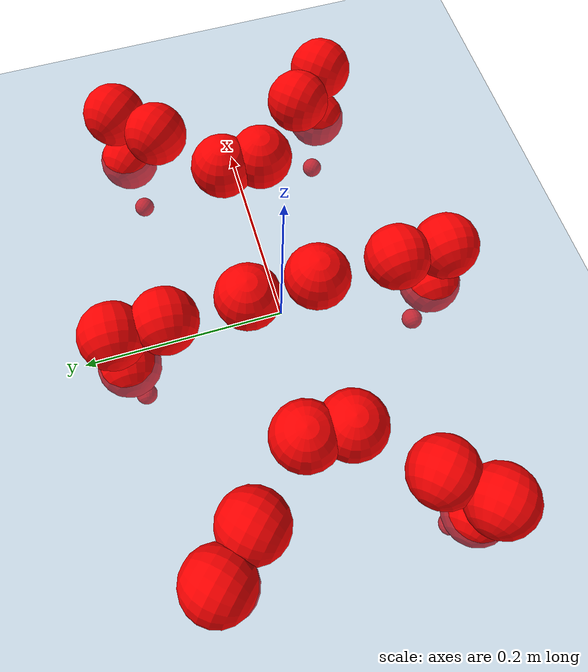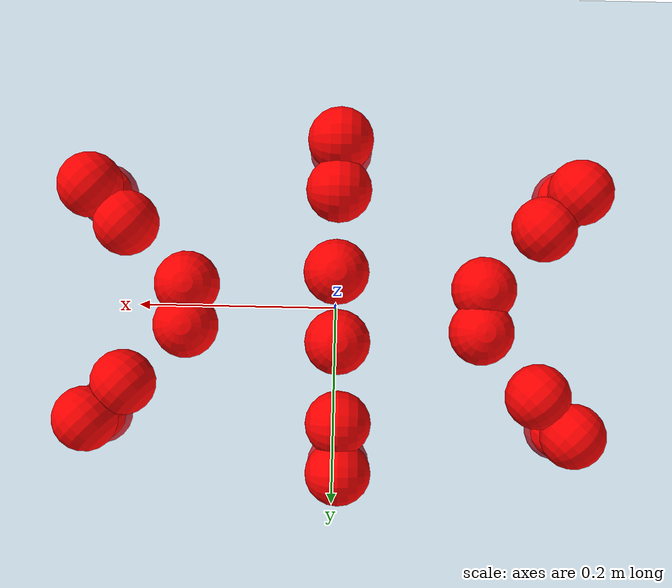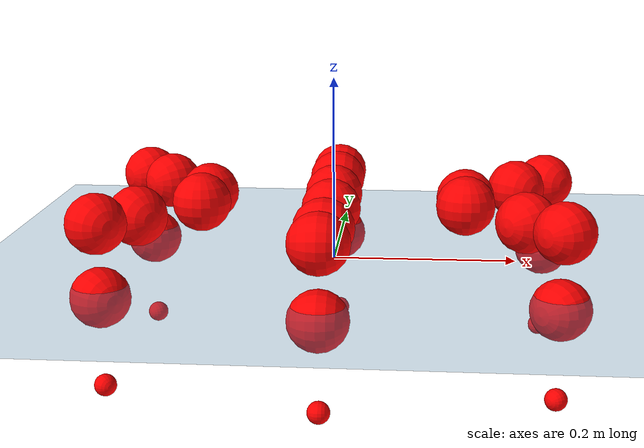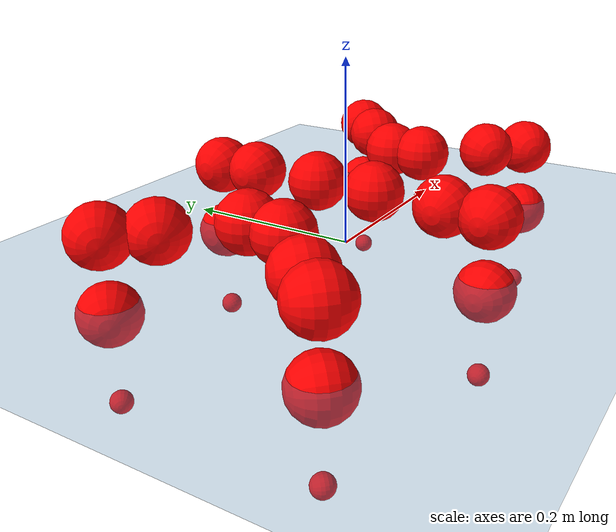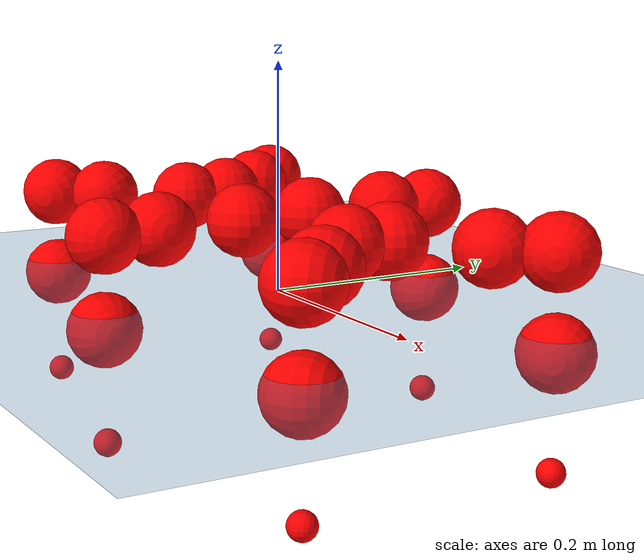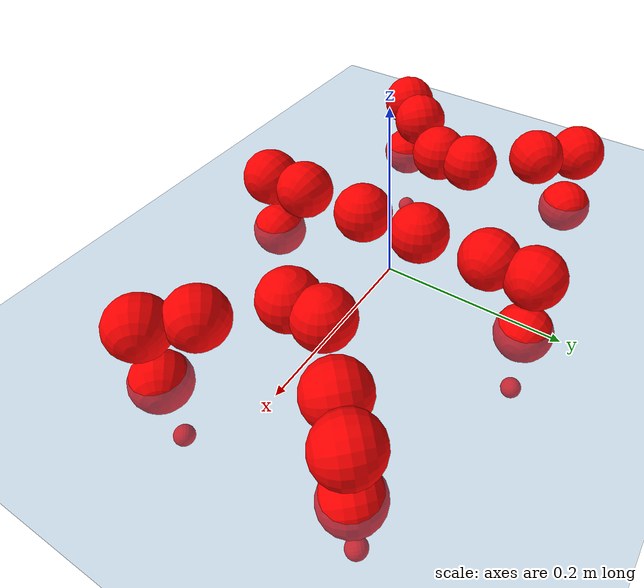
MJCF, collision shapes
<mujoco model="Golem">
  <compiler angle="radian" assetdir="assets" balanceinertia="true" inertiafromgeom="false"/>

  <option timestep="0.005" density="1.2" viscosity="2e-05"/>

  <size nkey="1"/>

  <visual>
    <quality shadowsize="8192"/>
    <map shadowclip="0.5"/>
  </visual>

  <default>
    <default class="/">
      <joint armature="0.01" damping="0.01" frictionloss="0.01"/>
      <geom contype="0" conaffinity="0" group="1" solref="-1000 -80"/>
      <site size="0.01 0.005 0.005" group="5"/>
      <general forcelimited="true" biastype="affine" gainprm="25" biasprm="0 -25 -0.5"/>
      <default class="visual">
        <geom type="mesh" group="2"/>
      </default>
      <default class="collision">
        <geom group="3"/>
      </default>
      <default class="foot">
        <geom size="0.01 0 0" condim="6" group="4" priority="1" solimp="0.015 1 0.01"/>
      </default>
      <default class="reward_collision_sphere">
        <geom group="5" rgba="1 0 0 1"/>
      </default>
    </default>
  </default>

  <asset>
    <texture type="skybox" colorspace="auto" name="//unnamed_texture_0" builtin="gradient" rgb1="0.95 0.95 0.95" rgb2="0.95 0.95 0.95" width="100" height="600"/>
    <texture type="2d" colorspace="auto" name="texplane" builtin="checker" rgb1="0.345 0.575 0.748" rgb2="0.345 0.575 0.748" markrgb="1 1 1" width="512" height="512"/>
    <material name="MatPlane" class="/" texture="texplane" texuniform="true" texrepeat="2 2" specular="0.9"/>
    <mesh name="body" class="/" file="body.stl" scale="0.001 0.001 0.001"/>
    <mesh name="coxa" class="/" file="coxa.stl" scale="0.001 0.001 0.001"/>
    <mesh name="femur" class="/" file="femur.stl" scale="0.001 0.001 0.001"/>
    <mesh name="tibia" class="/" file="tibia.stl" scale="0.001 0.001 0.001"/>
    <mesh name="tarsus" class="/" file="tarsus.stl" scale="0.001 0.001 0.001"/>
  </asset>

  <worldbody>
    <geom name="floor" class="/" size="100 100 0.125" type="plane" group="0" material="MatPlane"/>
    <light name="toplight_shadow" class="/" pos="0 0 5" dir="0.0990148 0.0990148 -0.990148" type="directional" ambient="0.04 0.04 0.04" diffuse="0.55 0.55 0.55" specular="0.12 0.12 0.12"/>
    <light name="toplight_fill" class="/" pos="0 0 5" dir="0.0990148 0.0990148 -0.990148" type="directional" castshadow="false" ambient="0.04 0.04 0.04" diffuse="0.3 0.3 0.3" specular="0.08 0.08 0.08"/>
    <body name="trunk" pos="-2.64575e-05 7.15001e-05 7.60152e-05" quat="1 7.53218e-05 -0.000260162 0.000625228">
      <inertial pos="-4.99675e-05 -0.000481093 -0.00363301" quat="1 0.000173417 3.20659e-05 6.28143e-05" mass="1.89228" diaginertia="0.00624201 0.000212701 0.0109099"/>
      <joint name="//unnamed_joint_0" type="free"/>
      <geom name="//unnamed_geom_1" class="/" pos="0 0 0.065152" quat="1 0 0 0" type="mesh" rgba="0.9 0.9 0.9 1" mesh="body"/>
      <site name="imu" class="/" pos="0.123571 0.00416511 0.102681" size="0.00796814"/>
      <camera name="track" class="/" pos="0 -0.925246 0" quat="0.707107 0.707107 0 0" mode="trackcom"/>
      <camera name="ego_camera" class="/" pos="0.118276 0 0.1018" quat="-0.5 -0.5 0.5 0.5"/>
      <body name="coxa_RR" pos="-0.162529 -0.0389117 0.065823" quat="0.382167 0.000426095 -0.000203681 -0.924093">
        <inertial pos="-0.00036466 0.000205151 0.000713412" quat="0.999995 0.000822693 -0.00292578 0.000847468" mass="0.10087" diaginertia="0.00624358 0.000211555 0.0109811"/>
        <joint name="coxa_joint_RR" class="/" pos="0 0 0" axis="0.00194334 0.00343053 -0.999992" range="-3.13696 3.12218" armature="0.00796451" damping="0.00791557" frictionloss="0.00764711"/>
        <geom name="//unnamed_geom_2" class="/" type="mesh" rgba="0.2 0.2 0.2 1" mesh="coxa"/>
        <geom name="//unnamed_geom_3" class="reward_collision_sphere" size="0.0318726" pos="-0.0272946 0 0"/>
        <body name="femur_RR" pos="0.0551872 0.00153953 -0.00136268" quat="0.499995 -0.500002 0.500004 0.499999">
          <inertial pos="0.000122406 8.42059e-05 -0.000273545" quat="1 -9.87113e-05 5.5913e-05 2.54039e-05" mass="0.100941" diaginertia="0.0061652 0.000209599 0.0109931"/>
          <joint name="femur_joint_RR" class="/" pos="0 0 0" axis="0.00332045 -0.000690608 -0.999994" range="-3.12462 3.13285" armature="0.00782883" damping="0.00157294" frictionloss="0.00811971"/>
          <geom name="//unnamed_geom_4" class="/" type="mesh" rgba="0.9 0.9 0.9 1" mesh="femur"/>
          <geom name="//unnamed_geom_5" class="reward_collision_sphere" size="0.0318726"/>
          <body name="tibia_RR" pos="-0.000298677 -0.049915 0.00135884" quat="5.05224e-05 1 9.50741e-05 -0.00023053">
            <inertial pos="-8.40804e-06 -0.000368259 -5.16644e-05" quat="1 0.000135353 0.000161474 0.000407438" mass="0.101296" diaginertia="0.00627163 0.000211783 0.0108947"/>
            <joint name="tibia_joint_RR" class="/" pos="0 0 0" axis="0.00206877 -0.00238591 0.999995" range="-3.12118 3.13295" armature="0.00796386" damping="0" frictionloss="0.00776779"/>
            <geom name="//unnamed_geom_6" class="/" type="mesh" rgba="0.2 0.2 0.2 1" mesh="tibia"/>
            <geom name="//unnamed_geom_7" class="reward_collision_sphere" size="0.0318726"/>
            <body name="tarsus_RR" pos="0.0788004 -0.000157934 -0.00107112" quat="1 6.20065e-05 -0.000285153 7.85001e-05">
              <inertial pos="0.0555482 0.000424296 0.00034565" quat="0.499288 0.499516 0.501193 0.500001" mass="0.0996849" diaginertia="0.00610211 0.00021163 0.010707"/>
              <joint name="tarsus_joint_RR" class="/" pos="0 0 0" axis="-6.04624e-05 -0.00207058 0.999998" range="-3.11989 3.12862" armature="0.00802577" damping="0.00104016" frictionloss="0.00813829"/>
              <geom name="//unnamed_geom_8" class="/" type="mesh" rgba="0.9 0.9 0.9 1" mesh="tarsus"/>
              <geom name="foot_1" class="foot" size="0.00766847" pos="0.1019 0 0" quat="0 -0.707107 0 0.707107"/>
              <geom name="//unnamed_geom_10" class="reward_collision_sphere" size="0.0318726"/>
              <geom name="//unnamed_geom_11" class="reward_collision_sphere" size="0.0119522" pos="0.0978055 0 0"/>
              <site name="foot_1" class="foot" pos="0.1019 0 0" quat="0 -0.707107 0 0.707107" size="0.00796814"/>
            </body>
          </body>
        </body>
      </body>
      <body name="coxa_RM" pos="-0.000509246 -0.0615599 0.0649306" quat="0.707069 0.000239608 -0.000258968 -0.707145">
        <inertial pos="-0.000614935 -0.000450288 0.000119369" quat="1 3.51741e-05 0.000296755 -0.000346466" mass="0.10085" diaginertia="0.00617376 0.000213086 0.0109957"/>
        <joint name="coxa_joint_RM" class="/" pos="0 0 0" axis="0.00390497 0.00235572 -0.99999" range="-3.13754 3.14123" armature="0.00842649" damping="0.00860884" frictionloss="0.00812777"/>
        <geom name="//unnamed_geom_12" class="/" type="mesh" rgba="0.2 0.2 0.2 1" mesh="coxa"/>
        <geom name="//unnamed_geom_13" class="reward_collision_sphere" size="0.0318726" pos="-0.0272946 0 0"/>
        <body name="femur_RM" pos="0.05198 -0.00113958 -0.000952599" quat="0.499888 -0.499953 0.500126 0.500033">
          <inertial pos="-0.000672676 -4.5138e-06 4.92854e-05" quat="1 -0.000449082 6.77942e-05 -9.29598e-05" mass="0.0997221" diaginertia="0.00613249 0.000213505 0.011018"/>
          <joint name="femur_joint_RM" class="/" pos="0 0 0" axis="0.00207627 0.00121203 -0.999997" range="-3.12034 3.14531" armature="0.00794678" damping="0.000729286" frictionloss="0.00774749"/>
          <geom name="//unnamed_geom_14" class="/" type="mesh" rgba="0.9 0.9 0.9 1" mesh="femur"/>
          <geom name="//unnamed_geom_15" class="reward_collision_sphere" size="0.0318726"/>
          <body name="tibia_RM" pos="0.00151298 -0.0487965 -0.000823933" quat="0.000242994 1 7.31782e-05 0.000207547">
            <inertial pos="-0.000635132 -0.000480215 -0.000419089" quat="0.999999 -0.00119745 0.000581689 -0.000672152" mass="0.101025" diaginertia="0.00626388 0.000210716 0.0109182"/>
            <joint name="tibia_joint_RM" class="/" pos="0 0 0" axis="0.000208708 0.000824335 1" range="-3.13111 3.15529" armature="0.0082075" damping="0.00158635" frictionloss="0.00845138"/>
            <geom name="//unnamed_geom_16" class="/" type="mesh" rgba="0.2 0.2 0.2 1" mesh="tibia"/>
            <geom name="//unnamed_geom_17" class="reward_collision_sphere" size="0.0318726"/>
            <body name="tarsus_RM" pos="0.0790724 0.000800087 0.000881954" quat="1 5.71745e-05 -6.44835e-06 3.65301e-05">
              <inertial pos="0.0540898 0.00101402 0.000273798" quat="0.499239 0.499438 0.499045 0.502271" mass="0.101634" diaginertia="0.00616193 0.000209635 0.0110185"/>
              <joint name="tarsus_joint_RM" class="/" pos="0 0 0" axis="-0.000294673 -0.000520564 1" range="-3.12047 3.11903" armature="0.00847224" damping="0.00171098" frictionloss="0.0078799"/>
              <geom name="//unnamed_geom_18" class="/" type="mesh" rgba="0.9 0.9 0.9 1" mesh="tarsus"/>
              <geom name="foot_2" class="foot" size="0.00823903" pos="0.1019 0 0" quat="0 -0.707107 0 0.707107"/>
              <geom name="//unnamed_geom_20" class="reward_collision_sphere" size="0.0318726"/>
              <geom name="//unnamed_geom_21" class="reward_collision_sphere" size="0.0119522" pos="0.0978055 0 0"/>
              <site name="foot_2" class="foot" pos="0.1019 0 0" quat="0 -0.707107 0 0.707107" size="0.00796814"/>
            </body>
          </body>
        </body>
      </body>
      <body name="coxa_RF" pos="0.162637 -0.0393008 0.0667116" quat="0.923905 -8.18911e-05 6.63909e-05 -0.382621">
        <inertial pos="0.000551066 -0.00175446 -0.00042349" quat="0.999998 -0.000883126 -0.000455939 -0.00174024" mass="0.10171" diaginertia="0.00620811 0.000213076 0.0109553"/>
        <joint name="coxa_joint_RF" class="/" pos="0 0 0" axis="0.00334564 0.00322601 -0.999989" range="-3.12084 3.15372" armature="0.00828225" damping="0.000478693" frictionloss="0.00778061"/>
        <geom name="//unnamed_geom_22" class="/" type="mesh" rgba="0.2 0.2 0.2 1" mesh="coxa"/>
        <geom name="//unnamed_geom_23" class="reward_collision_sphere" size="0.0318726" pos="-0.0272946 0 0"/>
        <body name="femur_RF" pos="0.0560091 0.00149977 -0.00209176" quat="0.49989 -0.499864 0.500265 0.49998">
          <inertial pos="-0.000187213 1.07711e-06 0.000817303" quat="0.999989 0.0018238 -0.00177167 -0.00388762" mass="0.100974" diaginertia="0.00627994 0.000208996 0.0108791"/>
          <joint name="femur_joint_RF" class="/" pos="0 0 0" axis="-0.00144338 -0.0019545 -0.999997" range="-3.1485 3.1382" armature="0.0081739" damping="0" frictionloss="0.00769752"/>
          <geom name="//unnamed_geom_24" class="/" type="mesh" rgba="0.9 0.9 0.9 1" mesh="femur"/>
          <geom name="//unnamed_geom_25" class="reward_collision_sphere" size="0.0318726"/>
          <body name="tibia_RF" pos="0.000195207 -0.0506505 -0.000414028" quat="-4.05396e-05 1 -5.4521e-05 2.50628e-05">
            <inertial pos="0.000492719 -0.000659108 0.000683981" quat="0.999996 -0.000177283 -0.000295191 0.00274893" mass="0.100439" diaginertia="0.00618555 0.000212355 0.0109252"/>
            <joint name="tibia_joint_RF" class="/" pos="0 0 0" axis="-0.000579286 0.000218465 1" range="-3.14332 3.13774" armature="0.00814042" damping="0.010296" frictionloss="0.00795694"/>
            <geom name="//unnamed_geom_26" class="/" type="mesh" rgba="0.2 0.2 0.2 1" mesh="tibia"/>
            <geom name="//unnamed_geom_27" class="reward_collision_sphere" size="0.0318726"/>
            <body name="tarsus_RF" pos="0.0803893 -7.09854e-05 0.000577632" quat="1 -0.000363147 0.000102637 -5.49873e-07">
              <inertial pos="0.0537732 0.000435503 0.00124044" quat="0.500916 0.499054 0.499641 0.500387" mass="0.101211" diaginertia="0.00622368 0.000208351 0.0107996"/>
              <joint name="tarsus_joint_RF" class="/" pos="0 0 0" axis="-0.000193781 0.00727768 0.999973" range="-3.11993 3.13711" armature="0.00800053" damping="0.000483819" frictionloss="0.0077434"/>
              <geom name="//unnamed_geom_28" class="/" type="mesh" rgba="0.9 0.9 0.9 1" mesh="tarsus"/>
              <geom name="foot_3" class="foot" size="0.00800913" pos="0.1019 0 0" quat="0 -0.707107 0 0.707107"/>
              <geom name="//unnamed_geom_30" class="reward_collision_sphere" size="0.0318726"/>
              <geom name="//unnamed_geom_31" class="reward_collision_sphere" size="0.0119522" pos="0.0978055 0 0"/>
              <site name="foot_3" class="foot" pos="0.1019 0 0" quat="0 -0.707107 0 0.707107" size="0.00796814"/>
            </body>
          </body>
        </body>
      </body>
      <body name="coxa_LR" pos="-0.160618 0.0409482 0.0675598" quat="0.382322 0.000132909 -9.0719e-05 0.924029">
        <inertial pos="0.000928904 -0.000664031 0.00170151" quat="1 0.000396639 -0.000329659 0.000510884" mass="0.100921" diaginertia="0.00624001 0.000211017 0.0108878"/>
        <joint name="coxa_joint_LR" class="/" pos="0 0 0" axis="-0.00031419 -0.00288747 -0.999996" range="-3.145 3.141" armature="0.00827812" damping="0.0048251" frictionloss="0.00800998"/>
        <geom name="//unnamed_geom_32" class="/" type="mesh" rgba="0.2 0.2 0.2 1" mesh="coxa"/>
        <geom name="//unnamed_geom_33" class="reward_collision_sphere" size="0.0318726" pos="-0.0272946 0 0"/>
        <body name="femur_LR" pos="0.0552439 -0.00387107 -0.00210575" quat="0.500129 -0.499935 0.500304 0.499632">
          <inertial pos="-0.000725909 -0.0005843 -0.000209797" quat="1 0.000364858 0.00054257 0.000230039" mass="0.100299" diaginertia="0.00621386 0.000211787 0.0107803"/>
          <joint name="femur_joint_LR" class="/" pos="0 0 0" axis="-7.63443e-05 0.00244575 0.999997" range="-3.15732 3.16699" armature="0.00794363" damping="0.00823649" frictionloss="0.00845631"/>
          <geom name="//unnamed_geom_34" class="/" type="mesh" rgba="0.9 0.9 0.9 1" mesh="femur"/>
          <geom name="//unnamed_geom_35" class="reward_collision_sphere" size="0.0318726"/>
          <body name="tibia_LR" pos="0.000315274 -0.0511809 -0.00218474" quat="-0.000257398 1 -0.000136558 0.000100757">
            <inertial pos="-0.000815101 0.000413547 -0.0002018" quat="1 -0.000124288 -0.000443333 -0.000145101" mass="0.101801" diaginertia="0.00620103 0.000209681 0.0108686"/>
            <joint name="tibia_joint_LR" class="/" pos="0 0 0" axis="-0.000717012 0.000525563 -1" stiffness="0.000351401" range="-3.14395 3.12963" armature="0.00755625" damping="0.00061912" frictionloss="0.00833415"/>
            <geom name="//unnamed_geom_36" class="/" type="mesh" rgba="0.2 0.2 0.2 1" mesh="tibia"/>
            <geom name="//unnamed_geom_37" class="reward_collision_sphere" size="0.0318726"/>
            <body name="tarsus_LR" pos="0.0797779 -0.000740861 0.000511019" quat="1 5.59575e-05 2.74366e-05 -2.1081e-05">
              <inertial pos="0.055523 0.00110727 2.92812e-05" quat="0.500454 0.500926 0.498874 0.499744" mass="0.10172" diaginertia="0.00625432 0.000214665 0.0109347"/>
              <joint name="tarsus_joint_LR" class="/" pos="0 0 0" axis="0.000224844 -0.00136356 -0.999999" range="-3.12294 3.14021" armature="0.00795404" damping="0" frictionloss="0.00817116"/>
              <geom name="//unnamed_geom_38" class="/" type="mesh" rgba="0.9 0.9 0.9 1" mesh="tarsus"/>
              <geom name="foot_4" class="foot" size="0.00778361" pos="0.1019 0 0" quat="0.707107 0 -0.707107 0"/>
              <geom name="//unnamed_geom_40" class="reward_collision_sphere" size="0.0318726"/>
              <geom name="//unnamed_geom_41" class="reward_collision_sphere" size="0.0119522" pos="0.0978055 0 0"/>
              <site name="foot_4" class="foot" pos="0.1019 0 0" quat="0.707107 0 -0.707107 0" size="0.00796814"/>
            </body>
          </body>
        </body>
      </body>
      <body name="coxa_LM" pos="-0.00260302 0.0607812 0.0653542" quat="0.706816 -0.000895526 8.01181e-05 0.707397">
        <inertial pos="0.000971181 0.000305533 -2.39608e-05" quat="0.999998 -0.000186087 0.00162939 0.000909124" mass="0.103726" diaginertia="0.00643942 0.000215735 0.0110018"/>
        <joint name="coxa_joint_LM" class="/" pos="0 0 0" axis="-0.000390785 9.78473e-05 -1" stiffness="0.00327594" range="-3.13973 3.13109" armature="0.00819355" damping="0.00450207" frictionloss="0.00793562"/>
        <geom name="//unnamed_geom_42" class="/" type="mesh" rgba="0.2 0.2 0.2 1" mesh="coxa"/>
        <geom name="//unnamed_geom_43" class="reward_collision_sphere" size="0.0318726" pos="-0.0272946 0 0"/>
        <body name="femur_LM" pos="0.0514093 0.00184539 -3.1496e-05" quat="0.500085 -0.499938 0.49999 0.499988">
          <inertial pos="-0.000220864 0.000562624 -0.000212929" quat="0.999992 0.00310066 -0.000988086 0.00243148" mass="0.100263" diaginertia="0.00617225 0.000208207 0.0107435"/>
          <joint name="femur_joint_LM" class="/" pos="0 0 0" axis="0.000145637 0.000641617 1" range="-3.13797 3.13516" armature="0.00831743" damping="0" frictionloss="0.00768764"/>
          <geom name="//unnamed_geom_44" class="/" type="mesh" rgba="0.9 0.9 0.9 1" mesh="femur"/>
          <geom name="//unnamed_geom_45" class="reward_collision_sphere" size="0.0318726"/>
          <body name="tibia_LM" pos="0.00118414 -0.0481712 0.000635904" quat="2.28562e-05 1 -0.000184282 -0.000162784">
            <inertial pos="-0.000999014 -0.00061622 0.000150528" quat="1 0.000108585 -2.46573e-06 -3.3485e-05" mass="0.101518" diaginertia="0.00625442 0.000212116 0.0110147"/>
            <joint name="tibia_joint_LM" class="/" pos="0 0 0" axis="0.00018735 -7.18686e-05 -1" stiffness="0.000197739" range="-3.14593 3.14085" armature="0.00791952" damping="0" frictionloss="0.00831767"/>
            <geom name="//unnamed_geom_46" class="/" type="mesh" rgba="0.2 0.2 0.2 1" mesh="tibia"/>
            <geom name="//unnamed_geom_47" class="reward_collision_sphere" size="0.0318726"/>
            <body name="tarsus_LM" pos="0.0803553 5.70243e-05 -0.000704678" quat="1 -3.40297e-06 -7.26667e-06 -1.18652e-05">
              <inertial pos="0.0555484 5.68632e-05 -8.40688e-05" quat="0.499339 0.500082 0.501516 0.49906" mass="0.102713" diaginertia="0.00629259 0.00021306 0.0110072"/>
              <joint name="tarsus_joint_LM" class="/" pos="0 0 0" axis="-0.00112229 -0.00188639 -0.999998" stiffness="0.000344274" range="-3.14185 3.14609" armature="0.00793351" damping="0.00334252" frictionloss="0.00795004"/>
              <geom name="//unnamed_geom_48" class="/" type="mesh" rgba="0.9 0.9 0.9 1" mesh="tarsus"/>
              <geom name="foot_5" class="foot" size="0.00815269" pos="0.1019 0 0" quat="0.707107 0 -0.707107 0"/>
              <geom name="//unnamed_geom_50" class="reward_collision_sphere" size="0.0318726"/>
              <geom name="//unnamed_geom_51" class="reward_collision_sphere" size="0.0119522" pos="0.0978055 0 0"/>
              <site name="foot_5" class="foot" pos="0.1019 0 0" quat="0.707107 0 -0.707107 0" size="0.00796814"/>
            </body>
          </body>
        </body>
      </body>
      <body name="coxa_LF" pos="0.163384 0.0390023 0.0656839" quat="0.923924 0.000103242 0.000156452 0.382576">
        <inertial pos="-0.000578914 0.00055621 -0.000111223" quat="1 0.0001376 -0.000265762 1.95501e-05" mass="0.101076" diaginertia="0.0062462 0.000211621 0.0109656"/>
        <joint name="coxa_joint_LF" class="/" pos="0 0 0" axis="-0.00140982 0.000186921 -0.999999" range="-3.12794 3.15142" armature="0.00797868" damping="0" frictionloss="0.00759977"/>
        <geom name="//unnamed_geom_52" class="/" type="mesh" rgba="0.2 0.2 0.2 1" mesh="coxa"/>
        <geom name="//unnamed_geom_53" class="reward_collision_sphere" size="0.0318726" pos="-0.0272946 0 0"/>
        <body name="femur_LF" pos="0.054457 -0.00227352 -0.00134512" quat="0.499753 -0.499817 0.500422 0.500008">
          <inertial pos="0.000413687 -0.00053072 -0.000616154" quat="0.999979 -0.00447924 0.0023427 0.00398301" mass="0.100953" diaginertia="0.00624886 0.000209652 0.0110185"/>
          <joint name="femur_joint_LF" class="/" pos="0 0 0" axis="0.000263011 0.000164198 1" range="-3.14418 3.15672" armature="0.00790838" damping="0" frictionloss="0.007403"/>
          <geom name="//unnamed_geom_54" class="/" type="mesh" rgba="0.9 0.9 0.9 1" mesh="femur"/>
          <geom name="//unnamed_geom_55" class="reward_collision_sphere" size="0.0318726"/>
          <body name="tibia_LF" pos="-0.000119083 -0.051126 -9.00045e-05" quat="3.71827e-05 1 -4.21433e-05 9.96164e-06">
            <inertial pos="0.000398637 -0.000100216 -0.000339372" quat="0.999989 -0.0037474 0.00276195 4.3673e-05" mass="0.100265" diaginertia="0.00625731 0.000214229 0.0110508"/>
            <joint name="tibia_joint_LF" class="/" pos="0 0 0" axis="-0.000420077 -0.000188079 -1" range="-3.16283 3.13591" armature="0.00760435" damping="0" frictionloss="0.00820851"/>
            <geom name="//unnamed_geom_56" class="/" type="mesh" rgba="0.2 0.2 0.2 1" mesh="tibia"/>
            <geom name="//unnamed_geom_57" class="reward_collision_sphere" size="0.0318726"/>
            <body name="tarsus_LF" pos="0.0801858 0.000265349 0.000308423" quat="1 -0.000140997 -1.36514e-08 -4.1773e-06">
              <inertial pos="0.0570616 0.000253162 0.001525" quat="0.499961 0.500002 0.500004 0.500033" mass="0.101632" diaginertia="0.00626255 0.000213752 0.0110833"/>
              <joint name="tarsus_joint_LF" class="/" pos="0 0 0" axis="-1.13958e-06 -2.83415e-05 -1" stiffness="0.0309504" range="-3.13532 3.11869" armature="0.00792391" damping="0.0241087" frictionloss="0.00816172"/>
              <geom name="//unnamed_geom_58" class="/" type="mesh" rgba="0.9 0.9 0.9 1" mesh="tarsus"/>
              <geom name="foot_6" class="foot" size="0.00794762" pos="0.1019 0 0" quat="0.707107 0 -0.707107 0"/>
              <geom name="//unnamed_geom_60" class="reward_collision_sphere" size="0.0318726"/>
              <geom name="//unnamed_geom_61" class="reward_collision_sphere" size="0.0119522" pos="0.0978055 0 0"/>
              <site name="foot_6" class="foot" pos="0.1019 0 0" quat="0.707107 0 -0.707107 0" size="0.00796814"/>
            </body>
          </body>
        </body>
      </body>
    </body>
  </worldbody>

  <contact>
    <pair class="/" geom1="floor" geom2="foot_1" name="//unnamed_contact_0"/>
    <pair class="/" geom1="floor" geom2="foot_2" name="//unnamed_contact_1"/>
    <pair class="/" geom1="floor" geom2="foot_3" name="//unnamed_contact_2"/>
    <pair class="/" geom1="floor" geom2="foot_4" name="//unnamed_contact_3"/>
    <pair class="/" geom1="floor" geom2="foot_5" name="//unnamed_contact_4"/>
    <pair class="/" geom1="floor" geom2="foot_6" name="//unnamed_contact_5"/>
  </contact>

  <actuator>
    <general name="coxa_joint_RR" class="/" joint="coxa_joint_RR" forcerange="-5.73319 5.73319" gainprm="18.5539" biasprm="0 -18.5539 -0.402762"/>
    <general name="femur_joint_RR" class="/" joint="femur_joint_RR" forcerange="-5.62916 5.62916" gainprm="18.5539" biasprm="0 -18.5539 -0.402762"/>
    <general name="tibia_joint_RR" class="/" joint="tibia_joint_RR" forcerange="-5.80278 5.80278" gainprm="18.5539" biasprm="0 -18.5539 -0.402762"/>
    <general name="tarsus_joint_RR" class="/" joint="tarsus_joint_RR" forcerange="-5.9047 5.9047" gainprm="18.5539" biasprm="0 -18.5539 -0.402762"/>
    <general name="coxa_joint_RM" class="/" joint="coxa_joint_RM" forcerange="-5.74428 5.74428" gainprm="18.5539" biasprm="0 -18.5539 -0.402762"/>
    <general name="femur_joint_RM" class="/" joint="femur_joint_RM" forcerange="-5.85243 5.85243" gainprm="18.5539" biasprm="0 -18.5539 -0.402762"/>
    <general name="tibia_joint_RM" class="/" joint="tibia_joint_RM" forcerange="-6.01512 6.01512" gainprm="18.5539" biasprm="0 -18.5539 -0.402762"/>
    <general name="tarsus_joint_RM" class="/" joint="tarsus_joint_RM" forcerange="-6.07695 6.07695" gainprm="18.5539" biasprm="0 -18.5539 -0.402762"/>
    <general name="coxa_joint_RF" class="/" joint="coxa_joint_RF" forcerange="-5.95704 5.95704" gainprm="18.5539" biasprm="0 -18.5539 -0.402762"/>
    <general name="femur_joint_RF" class="/" joint="femur_joint_RF" forcerange="-5.6732 5.6732" gainprm="18.5539" biasprm="0 -18.5539 -0.402762"/>
    <general name="tibia_joint_RF" class="/" joint="tibia_joint_RF" forcerange="-6.00057 6.00057" gainprm="18.5539" biasprm="0 -18.5539 -0.402762"/>
    <general name="tarsus_joint_RF" class="/" joint="tarsus_joint_RF" forcerange="-5.77953 5.77953" gainprm="18.5539" biasprm="0 -18.5539 -0.402762"/>
    <general name="coxa_joint_LR" class="/" joint="coxa_joint_LR" forcerange="-5.61504 5.61504" gainprm="18.5539" biasprm="0 -18.5539 -0.402762"/>
    <general name="femur_joint_LR" class="/" joint="femur_joint_LR" forcerange="-5.93201 5.93201" gainprm="18.5539" biasprm="0 -18.5539 -0.402762"/>
    <general name="tibia_joint_LR" class="/" joint="tibia_joint_LR" forcerange="-6.00854 6.00854" gainprm="18.5539" biasprm="0 -18.5539 -0.402762"/>
    <general name="tarsus_joint_LR" class="/" joint="tarsus_joint_LR" forcerange="-5.71648 5.71648" gainprm="18.5539" biasprm="0 -18.5539 -0.402762"/>
    <general name="coxa_joint_LM" class="/" joint="coxa_joint_LM" forcerange="-5.83607 5.83607" gainprm="18.5539" biasprm="0 -18.5539 -0.402762"/>
    <general name="femur_joint_LM" class="/" joint="femur_joint_LM" forcerange="-5.80497 5.80497" gainprm="18.5539" biasprm="0 -18.5539 -0.402762"/>
    <general name="tibia_joint_LM" class="/" joint="tibia_joint_LM" forcerange="-5.5663 5.5663" gainprm="18.5539" biasprm="0 -18.5539 -0.402762"/>
    <general name="tarsus_joint_LM" class="/" joint="tarsus_joint_LM" forcerange="-5.80672 5.80672" gainprm="18.5539" biasprm="0 -18.5539 -0.402762"/>
    <general name="coxa_joint_LF" class="/" joint="coxa_joint_LF" forcerange="-5.86062 5.86062" gainprm="18.5539" biasprm="0 -18.5539 -0.402762"/>
    <general name="femur_joint_LF" class="/" joint="femur_joint_LF" forcerange="-5.89238 5.89238" gainprm="18.5539" biasprm="0 -18.5539 -0.402762"/>
    <general name="tibia_joint_LF" class="/" joint="tibia_joint_LF" forcerange="-5.83306 5.83306" gainprm="18.5539" biasprm="0 -18.5539 -0.402762"/>
    <general name="tarsus_joint_LF" class="/" joint="tarsus_joint_LF" forcerange="-5.85108 5.85108" gainprm="18.5539" biasprm="0 -18.5539 -0.402762"/>
  </actuator>

  <sensor>
    <gyro site="imu" name="imu_angular_velocity"/>
    <velocimeter site="imu" name="imu_linear_velocity"/>
    <framelinvel objtype="site" objname="foot_1" name="foot_1_global_linear_velocity"/>
    <framelinvel objtype="site" objname="foot_2" name="foot_2_global_linear_velocity"/>
    <framelinvel objtype="site" objname="foot_3" name="foot_3_global_linear_velocity"/>
    <framelinvel objtype="site" objname="foot_4" name="foot_4_global_linear_velocity"/>
    <framelinvel objtype="site" objname="foot_5" name="foot_5_global_linear_velocity"/>
    <framelinvel objtype="site" objname="foot_6" name="foot_6_global_linear_velocity"/>
  </sensor>

  <keyframe>
    <key name="home" qpos="0 0 0.1457 1 0 0 0 0 0 0 0 0 0 0 0 0 0 0 0 0 0 0 0 0 0 0 0 0 0 0 0"/>
  </keyframe>
</mujoco>
